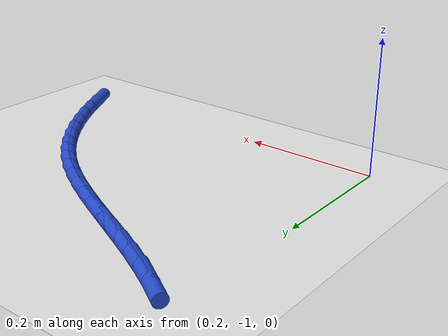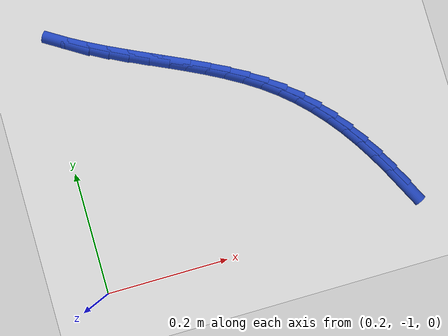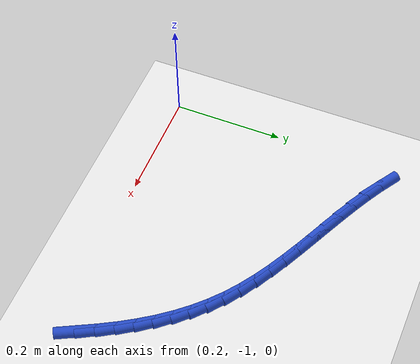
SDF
<sdf version="1.6">
 <world name="default">
  <model name="ground_plane">
   <static>1</static>
   <link name="link">
    <collision name="collision">
     <geometry><plane><normal>0 0 1</normal><size>100 100</size></plane></geometry>
     <surface><friction><ode><mu>100</mu><mu2>50</mu2></ode></friction></surface>
    </collision>
    <visual name="visual">
     <cast_shadows>0</cast_shadows>
     <geometry><plane><normal>0 0 1</normal><size>100 100</size></plane></geometry>
     <material>
      <script><uri>file://media/materials/scripts/gazebo.material</uri><name>Gazebo/WhiteGlow</name></script>
     </material>
    </visual>
   </link>
  </model>
  <model name="line">
   <link name="link_200">
    <pose>0.706539528785755 -0.959427732612211 0.01 0 1.57 -1.0994459897035285</pose>
    <collision name="collision">
     <geometry><cylinder><radius>0.01</radius><length>0.08</length></cylinder></geometry>
    </collision>
    <visual name="visual">
     <material>
      <script><name>Gazebo/Blue</name><uri>file://media/materials/scripts/gazebo.material</uri></script>
     </material>
     <geometry><cylinder><radius>0.01</radius><length>0.08</length></cylinder></geometry>
    </visual>
   </link>
   <link name="link_201">
    <pose>0.6912707922712024 -0.9294694036862673 0.01 0 1.57 -1.0608465371413835</pose>
    <collision name="collision">
     <geometry><cylinder><radius>0.01</radius><length>0.08</length></cylinder></geometry>
    </collision>
    <visual name="visual">
     <material>
      <script><name>Gazebo/Blue</name><uri>file://media/materials/scripts/gazebo.material</uri></script>
     </material>
     <geometry><cylinder><radius>0.01</radius><length>0.08</length></cylinder></geometry>
    </visual>
   </link>
   <link name="link_202">
    <pose>0.6753176220226439 -0.9009455780127703 0.01 0 1.57 -1.0164178064751046</pose>
    <collision name="collision">
     <geometry><cylinder><radius>0.01</radius><length>0.08</length></cylinder></geometry>
    </collision>
    <visual name="visual">
     <material>
      <script><name>Gazebo/Blue</name><uri>file://media/materials/scripts/gazebo.material</uri></script>
     </material>
     <geometry><cylinder><radius>0.01</radius><length>0.08</length></cylinder></geometry>
    </visual>
   </link>
   <link name="link_203">
    <pose>0.6585460265919685 -0.8738572998388874 0.01 0 1.57 -0.9661705920384043</pose>
    <collision name="collision">
     <geometry><cylinder><radius>0.01</radius><length>0.08</length></cylinder></geometry>
    </collision>
    <visual name="visual">
     <material>
      <script><name>Gazebo/Blue</name><uri>file://media/materials/scripts/gazebo.material</uri></script>
     </material>
     <geometry><cylinder><radius>0.01</radius><length>0.08</length></cylinder></geometry>
    </visual>
   </link>
   <link name="link_204">
    <pose>0.640822014531065 -0.8482056134117861 0.01 0 1.57 -0.9103383184408387</pose>
    <collision name="collision">
     <geometry><cylinder><radius>0.01</radius><length>0.08</length></cylinder></geometry>
    </collision>
    <visual name="visual">
     <material>
      <script><name>Gazebo/Blue</name><uri>file://media/materials/scripts/gazebo.material</uri></script>
     </material>
     <geometry><cylinder><radius>0.01</radius><length>0.08</length></cylinder></geometry>
    </visual>
   </link>
   <link name="link_205">
    <pose>0.6220115943918215 -0.8239915629786339 0.01 0 1.57 -0.8494262628964647</pose>
    <collision name="collision">
     <geometry><cylinder><radius>0.01</radius><length>0.08</length></cylinder></geometry>
    </collision>
    <visual name="visual">
     <material>
      <script><name>Gazebo/Blue</name><uri>file://media/materials/scripts/gazebo.material</uri></script>
     </material>
     <geometry><cylinder><radius>0.01</radius><length>0.08</length></cylinder></geometry>
    </visual>
   </link>
   <link name="link_206">
    <pose>0.6019807747261271 -0.8012161927865983 0.01 0 1.57 -0.7842379592604712</pose>
    <collision name="collision">
     <geometry><cylinder><radius>0.01</radius><length>0.08</length></cylinder></geometry>
    </collision>
    <visual name="visual">
     <material>
      <script><name>Gazebo/Blue</name><uri>file://media/materials/scripts/gazebo.material</uri></script>
     </material>
     <geometry><cylinder><radius>0.01</radius><length>0.08</length></cylinder></geometry>
    </visual>
   </link>
   <link name="link_207">
    <pose>0.5805955640858707 -0.7798805470828467 0.01 0 1.57 -0.7158629729850381</pose>
    <collision name="collision">
     <geometry><cylinder><radius>0.01</radius><length>0.08</length></cylinder></geometry>
    </collision>
    <visual name="visual">
     <material>
      <script><name>Gazebo/Blue</name><uri>file://media/materials/scripts/gazebo.material</uri></script>
     </material>
     <geometry><cylinder><radius>0.01</radius><length>0.08</length></cylinder></geometry>
    </visual>
   </link>
   <link name="link_208">
    <pose>0.55772197102294 -0.7599856701145467 0.01 0 1.57 -0.6457722803241531</pose>
    <collision name="collision">
     <geometry><cylinder><radius>0.01</radius><length>0.08</length></cylinder></geometry>
    </collision>
    <visual name="visual">
     <material>
      <script><name>Gazebo/Blue</name><uri>file://media/materials/scripts/gazebo.material</uri></script>
     </material>
     <geometry><cylinder><radius>0.01</radius><length>0.08</length></cylinder></geometry>
    </visual>
   </link>
   <link name="link_209">
    <pose>0.5332304339606274 -0.741529955616382 0.01 0 1.57 -0.5810418245545506</pose>
    <collision name="collision">
     <geometry><cylinder><radius>0.01</radius><length>0.08</length></cylinder></geometry>
    </collision>
    <visual name="visual">
     <material>
      <script><name>Gazebo/Blue</name><uri>file://media/materials/scripts/gazebo.material</uri></script>
     </material>
     <geometry><cylinder><radius>0.01</radius><length>0.08</length></cylinder></geometry>
    </visual>
   </link>
   <link name="link_210">
    <pose>0.5071602632217365 -0.7244107566748595 0.01 0 1.57 -0.5290749723184097</pose>
    <collision name="collision">
     <geometry><cylinder><radius>0.01</radius><length>0.08</length></cylinder></geometry>
    </collision>
    <visual name="visual">
     <material>
      <script><name>Gazebo/Blue</name><uri>file://media/materials/scripts/gazebo.material</uri></script>
     </material>
     <geometry><cylinder><radius>0.01</radius><length>0.08</length></cylinder></geometry>
    </visual>
   </link>
   <link name="link_211">
    <pose>0.47976822714889855 -0.7083953153317357 0.01 0 1.57 -0.48950652261258376</pose>
    <collision name="collision">
     <geometry><cylinder><radius>0.01</radius><length>0.08</length></cylinder></geometry>
    </collision>
    <visual name="visual">
     <material>
      <script><name>Gazebo/Blue</name><uri>file://media/materials/scripts/gazebo.material</uri></script>
     </material>
     <geometry><cylinder><radius>0.01</radius><length>0.08</length></cylinder></geometry>
    </visual>
   </link>
   <link name="link_212">
    <pose>0.4513254363684709 -0.6932422922505268 0.01 0 1.57 -0.46147505182503756</pose>
    <collision name="collision">
     <geometry><cylinder><radius>0.01</radius><length>0.08</length></cylinder></geometry>
    </collision>
    <visual name="visual">
     <material>
      <script><name>Gazebo/Blue</name><uri>file://media/materials/scripts/gazebo.material</uri></script>
     </material>
     <geometry><cylinder><radius>0.01</radius><length>0.08</length></cylinder></geometry>
    </visual>
   </link>
   <link name="link_213">
    <pose>0.42210300150680985 -0.6787103480947486 0.01 0 1.57 -0.4442711600901838</pose>
    <collision name="collision">
     <geometry><cylinder><radius>0.01</radius><length>0.08</length></cylinder></geometry>
    </collision>
    <visual name="visual">
     <material>
      <script><name>Gazebo/Blue</name><uri>file://media/materials/scripts/gazebo.material</uri></script>
     </material>
     <geometry><cylinder><radius>0.01</radius><length>0.08</length></cylinder></geometry>
    </visual>
   </link>
   <link name="link_214">
    <pose>0.3923720331902724 -0.6645581435279174 0.01 0 1.57 -0.43740931652702747</pose>
    <collision name="collision">
     <geometry><cylinder><radius>0.01</radius><length>0.08</length></cylinder></geometry>
    </collision>
    <visual name="visual">
     <material>
      <script><name>Gazebo/Blue</name><uri>file://media/materials/scripts/gazebo.material</uri></script>
     </material>
     <geometry><cylinder><radius>0.01</radius><length>0.08</length></cylinder></geometry>
    </visual>
   </link>
   <link name="link_215">
    <pose>0.3624036420452144 -0.6505443392135487 0.01 0 1.57 -0.4406579436906899</pose>
    <collision name="collision">
     <geometry><cylinder><radius>0.01</radius><length>0.08</length></cylinder></geometry>
    </collision>
    <visual name="visual">
     <material>
      <script><name>Gazebo/Blue</name><uri>file://media/materials/scripts/gazebo.material</uri></script>
     </material>
     <geometry><cylinder><radius>0.01</radius><length>0.08</length></cylinder></geometry>
    </visual>
   </link>
   <link name="link_216">
    <pose>0.3324689386979944 -0.6364275958151592 0.01 0 1.57 -0.45404598736590024</pose>
    <collision name="collision">
     <geometry><cylinder><radius>0.01</radius><length>0.08</length></cylinder></geometry>
    </collision>
    <visual name="visual">
     <material>
      <script><name>Gazebo/Blue</name><uri>file://media/materials/scripts/gazebo.material</uri></script>
     </material>
     <geometry><cylinder><radius>0.01</radius><length>0.08</length></cylinder></geometry>
    </visual>
   </link>
   <link name="link_217">
    <pose>0.3028390337749682 -0.6219665739962645 0.01 0 1.57 -0.47785331750783533</pose>
    <collision name="collision">
     <geometry><cylinder><radius>0.01</radius><length>0.08</length></cylinder></geometry>
    </collision>
    <visual name="visual">
     <material>
      <script><name>Gazebo/Blue</name><uri>file://media/materials/scripts/gazebo.material</uri></script>
     </material>
     <geometry><cylinder><radius>0.01</radius><length>0.08</length></cylinder></geometry>
    </visual>
   </link>
   <link name="link_218">
    <pose>0.2737850379024927 -0.606919934420381 0.01 0 1.57 -0.5125826039862609</pose>
    <collision name="collision">
     <geometry><cylinder><radius>0.01</radius><length>0.08</length></cylinder></geometry>
    </collision>
    <visual name="visual">
     <material>
      <script><name>Gazebo/Blue</name><uri>file://media/materials/scripts/gazebo.material</uri></script>
     </material>
     <geometry><cylinder><radius>0.01</radius><length>0.08</length></cylinder></geometry>
    </visual>
   </link>
   <link name="link_219">
    <pose>0.24557806170692453 -0.5910463377510243 0.01 0 1.57 -0.5589009385273753</pose>
    <collision name="collision">
     <geometry><cylinder><radius>0.01</radius><length>0.08</length></cylinder></geometry>
    </collision>
    <visual name="visual">
     <material>
      <script><name>Gazebo/Blue</name><uri>file://media/materials/scripts/gazebo.material</uri></script>
     </material>
     <geometry><cylinder><radius>0.01</radius><length>0.08</length></cylinder></geometry>
    </visual>
   </link>
  </model>
 </world>
</sdf>
